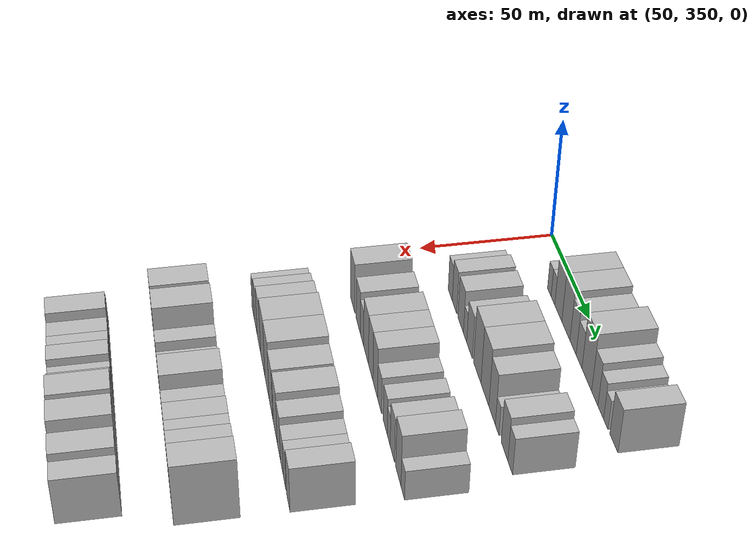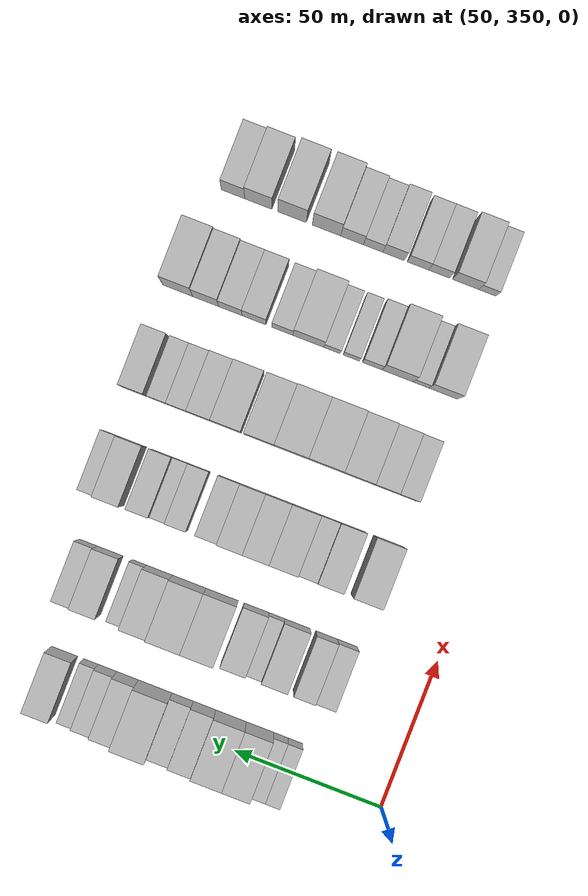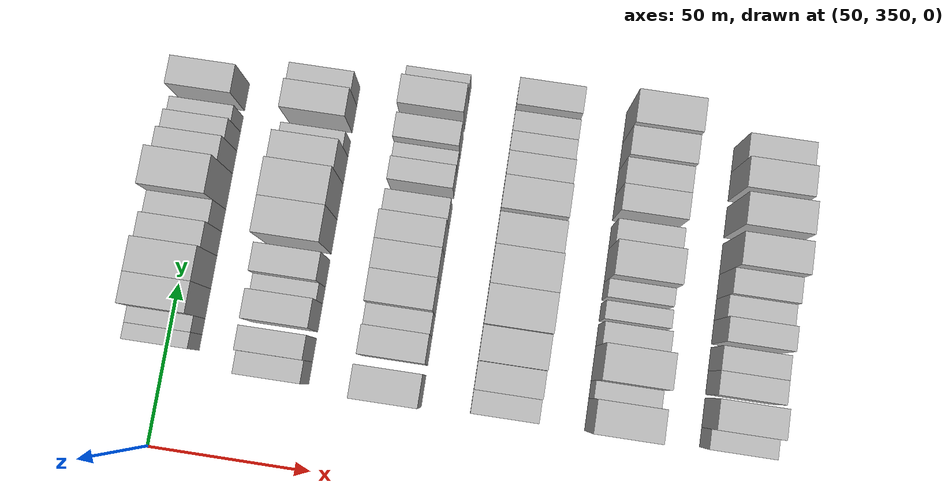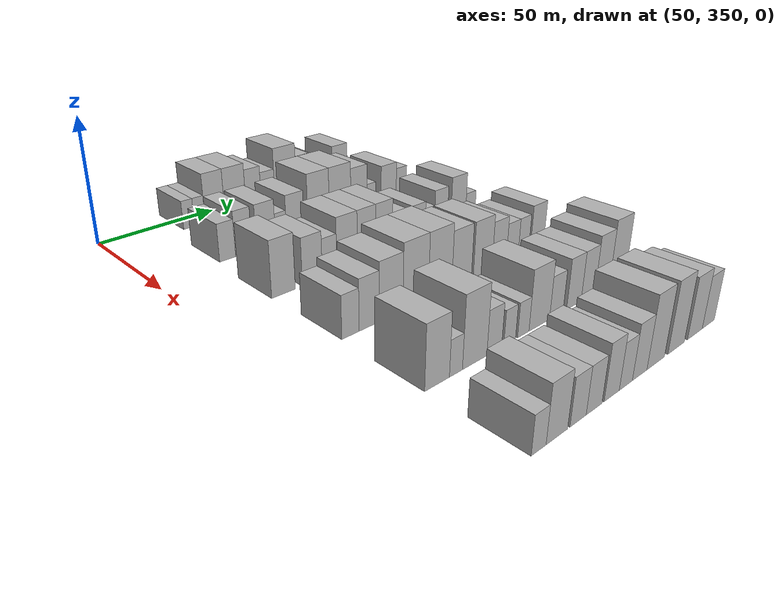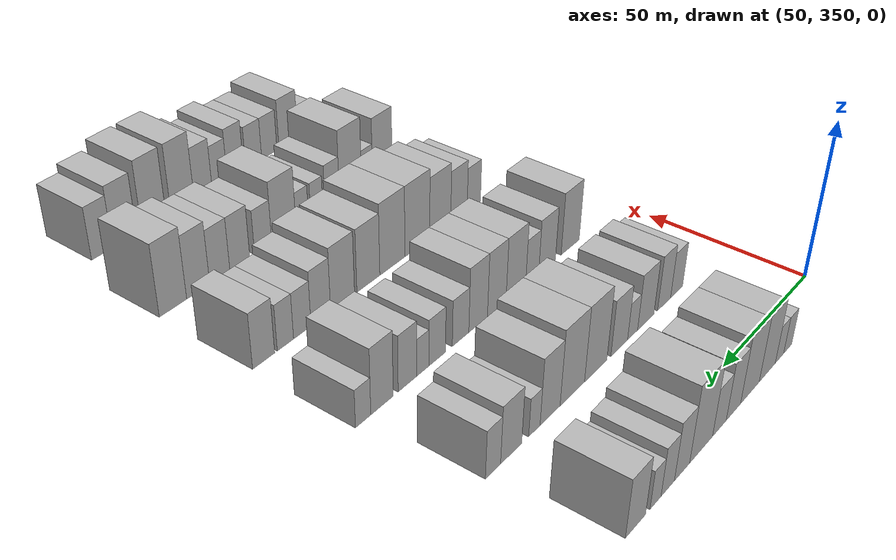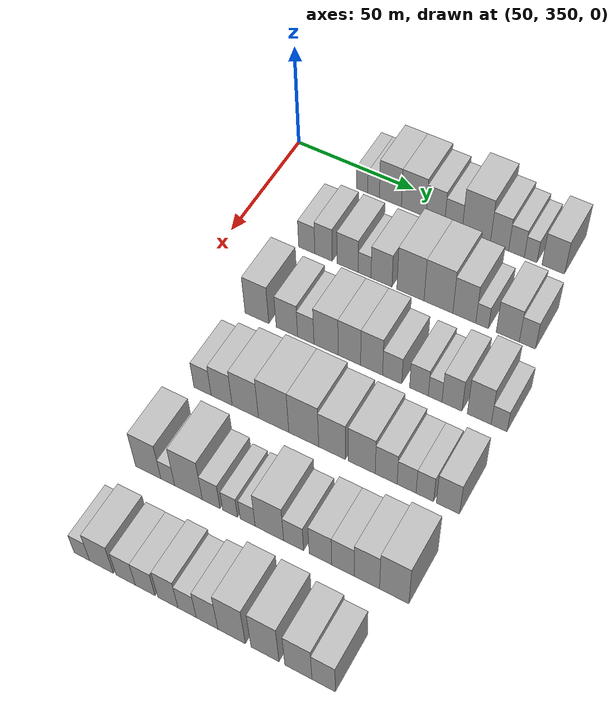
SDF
<sdf version="1.6">
 <world name="default">
  <model name="building_100">
   <static>1</static>
   <pose>50.0000 383.2186 0 0.000000 0.000000 0.000000</pose>
   <link name="link">
    <pose>0 0 6.00 0 0 0</pose>
    <collision name="collision"><geometry><box><size>20.0000 4.8909 12.0000</size></box></geometry></collision>
    <visual name="visual">
     <cast_shadows>0</cast_shadows>
     <geometry><box><size>20.0000 4.8909 12.0000</size></box></geometry>
     <material>
      <script>
       <uri>model://HANNAS_wall/materials/scripts</uri>
       <uri>model://HANNAS_wall/materials/textures</uri>
       <name>vrc/HANNAS_wall</name>
      </script>
     </material>
    </visual>
   </link>
  </model>
  <model name="building_101">
   <static>1</static>
   <pose>50.0000 388.1436 0 0.000000 0.000000 0.000000</pose>
   <link name="link">
    <pose>0 0 6.00 0 0 0</pose>
    <collision name="collision"><geometry><box><size>20.0000 4.9592 12.0000</size></box></geometry></collision>
    <visual name="visual">
     <cast_shadows>0</cast_shadows>
     <geometry><box><size>20.0000 4.9592 12.0000</size></box></geometry>
     <material>
      <script>
       <uri>model://HANNAS_wall/materials/scripts</uri>
       <uri>model://HANNAS_wall/materials/textures</uri>
       <name>vrc/HANNAS_wall</name>
      </script>
     </material>
    </visual>
   </link>
  </model>
  <model name="building_102">
   <static>1</static>
   <pose>50.0000 395.2935 0 0.000000 0.000000 0.000000</pose>
   <link name="link">
    <pose>0 0 10.50 0 0 0</pose>
    <collision name="collision"><geometry><box><size>20.0000 9.3405 21.0000</size></box></geometry></collision>
    <visual name="visual">
     <cast_shadows>0</cast_shadows>
     <geometry><box><size>20.0000 9.3405 21.0000</size></box></geometry>
     <material>
      <script>
       <uri>model://HANNAS_wall/materials/scripts</uri>
       <uri>model://HANNAS_wall/materials/textures</uri>
       <name>vrc/HANNAS_wall</name>
      </script>
     </material>
    </visual>
   </link>
  </model>
  <model name="building_103">
   <static>1</static>
   <pose>50.0000 405.1580 0 0.000000 0.000000 0.000000</pose>
   <link name="link">
    <pose>0 0 10.50 0 0 0</pose>
    <collision name="collision"><geometry><box><size>20.0000 10.3886 21.0000</size></box></geometry></collision>
    <visual name="visual">
     <cast_shadows>0</cast_shadows>
     <geometry><box><size>20.0000 10.3886 21.0000</size></box></geometry>
     <material>
      <script>
       <uri>model://HANNAS_wall/materials/scripts</uri>
       <uri>model://HANNAS_wall/materials/textures</uri>
       <name>vrc/HANNAS_wall</name>
      </script>
     </material>
    </visual>
   </link>
  </model>
  <model name="building_104">
   <static>1</static>
   <pose>50.0000 414.2094 0 0.000000 0.000000 0.000000</pose>
   <link name="link">
    <pose>0 0 9.00 0 0 0</pose>
    <collision name="collision"><geometry><box><size>20.0000 7.7143 18.0000</size></box></geometry></collision>
    <visual name="visual">
     <cast_shadows>0</cast_shadows>
     <geometry><box><size>20.0000 7.7143 18.0000</size></box></geometry>
     <material>
      <script>
       <uri>model://HANNAS_wall/materials/scripts</uri>
       <uri>model://HANNAS_wall/materials/textures</uri>
       <name>vrc/HANNAS_wall</name>
      </script>
     </material>
    </visual>
   </link>
  </model>
  <model name="building_105">
   <static>1</static>
   <pose>50.0000 421.6431 0 0.000000 0.000000 0.000000</pose>
   <link name="link">
    <pose>0 0 7.50 0 0 0</pose>
    <collision name="collision"><geometry><box><size>20.0000 7.1531 15.0000</size></box></geometry></collision>
    <visual name="visual">
     <cast_shadows>0</cast_shadows>
     <geometry><box><size>20.0000 7.1531 15.0000</size></box></geometry>
     <material>
      <script>
       <uri>model://HANNAS_wall/materials/scripts</uri>
       <uri>model://HANNAS_wall/materials/textures</uri>
       <name>vrc/HANNAS_wall</name>
      </script>
     </material>
    </visual>
   </link>
  </model>
  <model name="building_106">
   <static>1</static>
   <pose>50.0000 430.9788 0 0.000000 0.000000 0.000000</pose>
   <link name="link">
    <pose>0 0 12.00 0 0 0</pose>
    <collision name="collision"><geometry><box><size>20.0000 11.5182 24.0000</size></box></geometry></collision>
    <visual name="visual">
     <cast_shadows>0</cast_shadows>
     <geometry><box><size>20.0000 11.5182 24.0000</size></box></geometry>
     <material>
      <script>
       <uri>model://HANNAS_wall/materials/scripts</uri>
       <uri>model://HANNAS_wall/materials/textures</uri>
       <name>vrc/HANNAS_wall</name>
      </script>
     </material>
    </visual>
   </link>
  </model>
  <model name="building_107">
   <static>1</static>
   <pose>50.0000 440.4270 0 0.000000 0.000000 0.000000</pose>
   <link name="link">
    <pose>0 0 9.00 0 0 0</pose>
    <collision name="collision"><geometry><box><size>20.0000 7.3782 18.0000</size></box></geometry></collision>
    <visual name="visual">
     <cast_shadows>0</cast_shadows>
     <geometry><box><size>20.0000 7.3782 18.0000</size></box></geometry>
     <material>
      <script>
       <uri>model://HANNAS_wall/materials/scripts</uri>
       <uri>model://HANNAS_wall/materials/textures</uri>
       <name>vrc/HANNAS_wall</name>
      </script>
     </material>
    </visual>
   </link>
  </model>
  <model name="building_108">
   <static>1</static>
   <pose>50.0000 447.2588 0 0.000000 0.000000 0.000000</pose>
   <link name="link">
    <pose>0 0 7.50 0 0 0</pose>
    <collision name="collision"><geometry><box><size>20.0000 6.2854 15.0000</size></box></geometry></collision>
    <visual name="visual">
     <cast_shadows>0</cast_shadows>
     <geometry><box><size>20.0000 6.2854 15.0000</size></box></geometry>
     <material>
      <script>
       <uri>model://HANNAS_wall/materials/scripts</uri>
       <uri>model://HANNAS_wall/materials/textures</uri>
       <name>vrc/HANNAS_wall</name>
      </script>
     </material>
    </visual>
   </link>
  </model>
  <model name="building_109">
   <static>1</static>
   <pose>50.0000 452.9216 0 0.000000 0.000000 0.000000</pose>
   <link name="link">
    <pose>0 0 6.00 0 0 0</pose>
    <collision name="collision"><geometry><box><size>20.0000 5.0402 12.0000</size></box></geometry></collision>
    <visual name="visual">
     <cast_shadows>0</cast_shadows>
     <geometry><box><size>20.0000 5.0402 12.0000</size></box></geometry>
     <material>
      <script>
       <uri>model://HANNAS_wall/materials/scripts</uri>
       <uri>model://HANNAS_wall/materials/textures</uri>
       <name>vrc/HANNAS_wall</name>
      </script>
     </material>
    </visual>
   </link>
  </model>
  <model name="building_110">
   <static>1</static>
   <pose>50.0000 461.8830 0 0.000000 0.000000 0.000000</pose>
   <link name="link">
    <pose>0 0 9.00 0 0 0</pose>
    <collision name="collision"><geometry><box><size>20.0000 8.8826 18.0000</size></box></geometry></collision>
    <visual name="visual">
     <cast_shadows>0</cast_shadows>
     <geometry><box><size>20.0000 8.8826 18.0000</size></box></geometry>
     <material>
      <script>
       <uri>model://HANNAS_wall/materials/scripts</uri>
       <uri>model://HANNAS_wall/materials/textures</uri>
       <name>vrc/HANNAS_wall</name>
      </script>
     </material>
    </visual>
   </link>
  </model>
  <model name="building_227">
   <static>1</static>
   <pose>85.0000 379.1085 0 0.000000 0.000000 0.000000</pose>
   <link name="link">
    <pose>0 0 7.50 0 0 0</pose>
    <collision name="collision"><geometry><box><size>20.0000 6.8151 15.0000</size></box></geometry></collision>
    <visual name="visual">
     <cast_shadows>0</cast_shadows>
     <geometry><box><size>20.0000 6.8151 15.0000</size></box></geometry>
     <material>
      <script>
       <uri>model://HANNAS_wall/materials/scripts</uri>
       <uri>model://HANNAS_wall/materials/textures</uri>
       <name>vrc/HANNAS_wall</name>
      </script>
     </material>
    </visual>
   </link>
  </model>
  <model name="building_228">
   <static>1</static>
   <pose>85.0000 386.1387 0 0.000000 0.000000 0.000000</pose>
   <link name="link">
    <pose>0 0 9.00 0 0 0</pose>
    <collision name="collision"><geometry><box><size>20.0000 7.2455 18.0000</size></box></geometry></collision>
    <visual name="visual">
     <cast_shadows>0</cast_shadows>
     <geometry><box><size>20.0000 7.2455 18.0000</size></box></geometry>
     <material>
      <script>
       <uri>model://HANNAS_wall/materials/scripts</uri>
       <uri>model://HANNAS_wall/materials/textures</uri>
       <name>vrc/HANNAS_wall</name>
      </script>
     </material>
    </visual>
   </link>
  </model>
  <model name="building_229">
   <static>1</static>
   <pose>85.0000 396.1389 0 0.000000 0.000000 0.000000</pose>
   <link name="link">
    <pose>0 0 9.00 0 0 0</pose>
    <collision name="collision"><geometry><box><size>20.0000 8.7548 18.0000</size></box></geometry></collision>
    <visual name="visual">
     <cast_shadows>0</cast_shadows>
     <geometry><box><size>20.0000 8.7548 18.0000</size></box></geometry>
     <material>
      <script>
       <uri>model://HANNAS_wall/materials/scripts</uri>
       <uri>model://HANNAS_wall/materials/textures</uri>
       <name>vrc/HANNAS_wall</name>
      </script>
     </material>
    </visual>
   </link>
  </model>
  <model name="building_230">
   <static>1</static>
   <pose>85.0000 403.1270 0 0.000000 0.000000 0.000000</pose>
   <link name="link">
    <pose>0 0 6.00 0 0 0</pose>
    <collision name="collision"><geometry><box><size>20.0000 5.2213 12.0000</size></box></geometry></collision>
    <visual name="visual">
     <cast_shadows>0</cast_shadows>
     <geometry><box><size>20.0000 5.2213 12.0000</size></box></geometry>
     <material>
      <script>
       <uri>model://HANNAS_wall/materials/scripts</uri>
       <uri>model://HANNAS_wall/materials/textures</uri>
       <name>vrc/HANNAS_wall</name>
      </script>
     </material>
    </visual>
   </link>
  </model>
  <model name="building_231">
   <static>1</static>
   <pose>85.0000 409.9870 0 0.000000 0.000000 0.000000</pose>
   <link name="link">
    <pose>0 0 9.00 0 0 0</pose>
    <collision name="collision"><geometry><box><size>20.0000 8.4988 18.0000</size></box></geometry></collision>
    <visual name="visual">
     <cast_shadows>0</cast_shadows>
     <geometry><box><size>20.0000 8.4988 18.0000</size></box></geometry>
     <material>
      <script>
       <uri>model://HANNAS_wall/materials/scripts</uri>
       <uri>model://HANNAS_wall/materials/textures</uri>
       <name>vrc/HANNAS_wall</name>
      </script>
     </material>
    </visual>
   </link>
  </model>
  <model name="building_232">
   <static>1</static>
   <pose>85.0000 421.6859 0 0.000000 0.000000 0.000000</pose>
   <link name="link">
    <pose>0 0 12.00 0 0 0</pose>
    <collision name="collision"><geometry><box><size>20.0000 10.8989 24.0000</size></box></geometry></collision>
    <visual name="visual">
     <cast_shadows>0</cast_shadows>
     <geometry><box><size>20.0000 10.8989 24.0000</size></box></geometry>
     <material>
      <script>
       <uri>model://HANNAS_wall/materials/scripts</uri>
       <uri>model://HANNAS_wall/materials/textures</uri>
       <name>vrc/HANNAS_wall</name>
      </script>
     </material>
    </visual>
   </link>
  </model>
  <model name="building_233">
   <static>1</static>
   <pose>85.0000 432.8403 0 0.000000 0.000000 0.000000</pose>
   <link name="link">
    <pose>0 0 12.00 0 0 0</pose>
    <collision name="collision"><geometry><box><size>20.0000 11.4097 24.0000</size></box></geometry></collision>
    <visual name="visual">
     <cast_shadows>0</cast_shadows>
     <geometry><box><size>20.0000 11.4097 24.0000</size></box></geometry>
     <material>
      <script>
       <uri>model://HANNAS_wall/materials/scripts</uri>
       <uri>model://HANNAS_wall/materials/textures</uri>
       <name>vrc/HANNAS_wall</name>
      </script>
     </material>
    </visual>
   </link>
  </model>
  <model name="building_234">
   <static>1</static>
   <pose>85.0000 443.0267 0 0.000000 0.000000 0.000000</pose>
   <link name="link">
    <pose>0 0 10.50 0 0 0</pose>
    <collision name="collision"><geometry><box><size>20.0000 8.9631 21.0000</size></box></geometry></collision>
    <visual name="visual">
     <cast_shadows>0</cast_shadows>
     <geometry><box><size>20.0000 8.9631 21.0000</size></box></geometry>
     <material>
      <script>
       <uri>model://HANNAS_wall/materials/scripts</uri>
       <uri>model://HANNAS_wall/materials/textures</uri>
       <name>vrc/HANNAS_wall</name>
      </script>
     </material>
    </visual>
   </link>
  </model>
  <model name="building_235">
   <static>1</static>
   <pose>85.0000 449.9866 0 0.000000 0.000000 0.000000</pose>
   <link name="link">
    <pose>0 0 6.00 0 0 0</pose>
    <collision name="collision"><geometry><box><size>20.0000 4.9568 12.0000</size></box></geometry></collision>
    <visual name="visual">
     <cast_shadows>0</cast_shadows>
     <geometry><box><size>20.0000 4.9568 12.0000</size></box></geometry>
     <material>
      <script>
       <uri>model://HANNAS_wall/materials/scripts</uri>
       <uri>model://HANNAS_wall/materials/textures</uri>
       <name>vrc/HANNAS_wall</name>
      </script>
     </material>
    </visual>
   </link>
  </model>
  <model name="building_236">
   <static>1</static>
   <pose>85.0000 459.8784 0 0.000000 0.000000 0.000000</pose>
   <link name="link">
    <pose>0 0 9.00 0 0 0</pose>
    <collision name="collision"><geometry><box><size>20.0000 8.8268 18.0000</size></box></geometry></collision>
    <visual name="visual">
     <cast_shadows>0</cast_shadows>
     <geometry><box><size>20.0000 8.8268 18.0000</size></box></geometry>
     <material>
      <script>
       <uri>model://HANNAS_wall/materials/scripts</uri>
       <uri>model://HANNAS_wall/materials/textures</uri>
       <name>vrc/HANNAS_wall</name>
      </script>
     </material>
    </visual>
   </link>
  </model>
  <model name="building_237">
   <static>1</static>
   <pose>85.0000 467.3792 0 0.000000 0.000000 0.000000</pose>
   <link name="link">
    <pose>0 0 7.50 0 0 0</pose>
    <collision name="collision"><geometry><box><size>20.0000 6.1748 15.0000</size></box></geometry></collision>
    <visual name="visual">
     <cast_shadows>0</cast_shadows>
     <geometry><box><size>20.0000 6.1748 15.0000</size></box></geometry>
     <material>
      <script>
       <uri>model://HANNAS_wall/materials/scripts</uri>
       <uri>model://HANNAS_wall/materials/textures</uri>
       <name>vrc/HANNAS_wall</name>
      </script>
     </material>
    </visual>
   </link>
  </model>
  <model name="building_354">
   <static>1</static>
   <pose>120.0000 378.7935 0 0.000000 0.000000 0.000000</pose>
   <link name="link">
    <pose>0 0 10.50 0 0 0</pose>
    <collision name="collision"><geometry><box><size>20.0000 9.7318 21.0000</size></box></geometry></collision>
    <visual name="visual">
     <cast_shadows>0</cast_shadows>
     <geometry><box><size>20.0000 9.7318 21.0000</size></box></geometry>
     <material>
      <script>
       <uri>model://HANNAS_wall/materials/scripts</uri>
       <uri>model://HANNAS_wall/materials/textures</uri>
       <name>vrc/HANNAS_wall</name>
      </script>
     </material>
    </visual>
   </link>
  </model>
  <model name="building_355">
   <static>1</static>
   <pose>120.0000 390.9994 0 0.000000 0.000000 0.000000</pose>
   <link name="link">
    <pose>0 0 9.00 0 0 0</pose>
    <collision name="collision"><geometry><box><size>20.0000 8.6802 18.0000</size></box></geometry></collision>
    <visual name="visual">
     <cast_shadows>0</cast_shadows>
     <geometry><box><size>20.0000 8.6802 18.0000</size></box></geometry>
     <material>
      <script>
       <uri>model://HANNAS_wall/materials/scripts</uri>
       <uri>model://HANNAS_wall/materials/textures</uri>
       <name>vrc/HANNAS_wall</name>
      </script>
     </material>
    </visual>
   </link>
  </model>
  <model name="building_356">
   <static>1</static>
   <pose>120.0000 398.6288 0 0.000000 0.000000 0.000000</pose>
   <link name="link">
    <pose>0 0 7.50 0 0 0</pose>
    <collision name="collision"><geometry><box><size>20.0000 6.5785 15.0000</size></box></geometry></collision>
    <visual name="visual">
     <cast_shadows>0</cast_shadows>
     <geometry><box><size>20.0000 6.5785 15.0000</size></box></geometry>
     <material>
      <script>
       <uri>model://HANNAS_wall/materials/scripts</uri>
       <uri>model://HANNAS_wall/materials/textures</uri>
       <name>vrc/HANNAS_wall</name>
      </script>
     </material>
    </visual>
   </link>
  </model>
  <model name="building_357">
   <static>1</static>
   <pose>120.0000 406.7277 0 0.000000 0.000000 0.000000</pose>
   <link name="link">
    <pose>0 0 10.50 0 0 0</pose>
    <collision name="collision"><geometry><box><size>20.0000 9.6194 21.0000</size></box></geometry></collision>
    <visual name="visual">
     <cast_shadows>0</cast_shadows>
     <geometry><box><size>20.0000 9.6194 21.0000</size></box></geometry>
     <material>
      <script>
       <uri>model://HANNAS_wall/materials/scripts</uri>
       <uri>model://HANNAS_wall/materials/textures</uri>
       <name>vrc/HANNAS_wall</name>
      </script>
     </material>
    </visual>
   </link>
  </model>
  <model name="building_358">
   <static>1</static>
   <pose>120.0000 415.9400 0 0.000000 0.000000 0.000000</pose>
   <link name="link">
    <pose>0 0 10.50 0 0 0</pose>
    <collision name="collision"><geometry><box><size>20.0000 8.8050 21.0000</size></box></geometry></collision>
    <visual name="visual">
     <cast_shadows>0</cast_shadows>
     <geometry><box><size>20.0000 8.8050 21.0000</size></box></geometry>
     <material>
      <script>
       <uri>model://HANNAS_wall/materials/scripts</uri>
       <uri>model://HANNAS_wall/materials/textures</uri>
       <name>vrc/HANNAS_wall</name>
      </script>
     </material>
    </visual>
   </link>
  </model>
  <model name="building_359">
   <static>1</static>
   <pose>120.0000 424.6210 0 0.000000 0.000000 0.000000</pose>
   <link name="link">
    <pose>0 0 10.50 0 0 0</pose>
    <collision name="collision"><geometry><box><size>20.0000 8.5571 21.0000</size></box></geometry></collision>
    <visual name="visual">
     <cast_shadows>0</cast_shadows>
     <geometry><box><size>20.0000 8.5571 21.0000</size></box></geometry>
     <material>
      <script>
       <uri>model://HANNAS_wall/materials/scripts</uri>
       <uri>model://HANNAS_wall/materials/textures</uri>
       <name>vrc/HANNAS_wall</name>
      </script>
     </material>
    </visual>
   </link>
  </model>
  <model name="building_360">
   <static>1</static>
   <pose>120.0000 432.5908 0 0.000000 0.000000 0.000000</pose>
   <link name="link">
    <pose>0 0 7.50 0 0 0</pose>
    <collision name="collision"><geometry><box><size>20.0000 7.3825 15.0000</size></box></geometry></collision>
    <visual name="visual">
     <cast_shadows>0</cast_shadows>
     <geometry><box><size>20.0000 7.3825 15.0000</size></box></geometry>
     <material>
      <script>
       <uri>model://HANNAS_wall/materials/scripts</uri>
       <uri>model://HANNAS_wall/materials/textures</uri>
       <name>vrc/HANNAS_wall</name>
      </script>
     </material>
    </visual>
   </link>
  </model>
  <model name="building_361">
   <static>1</static>
   <pose>120.0000 442.8412 0 0.000000 0.000000 0.000000</pose>
   <link name="link">
    <pose>0 0 7.50 0 0 0</pose>
    <collision name="collision"><geometry><box><size>20.0000 7.1185 15.0000</size></box></geometry></collision>
    <visual name="visual">
     <cast_shadows>0</cast_shadows>
     <geometry><box><size>20.0000 7.1185 15.0000</size></box></geometry>
     <material>
      <script>
       <uri>model://HANNAS_wall/materials/scripts</uri>
       <uri>model://HANNAS_wall/materials/textures</uri>
       <name>vrc/HANNAS_wall</name>
      </script>
     </material>
    </visual>
   </link>
  </model>
  <model name="building_362">
   <static>1</static>
   <pose>120.0000 448.9829 0 0.000000 0.000000 0.000000</pose>
   <link name="link">
    <pose>0 0 6.00 0 0 0</pose>
    <collision name="collision"><geometry><box><size>20.0000 5.1649 12.0000</size></box></geometry></collision>
    <visual name="visual">
     <cast_shadows>0</cast_shadows>
     <geometry><box><size>20.0000 5.1649 12.0000</size></box></geometry>
     <material>
      <script>
       <uri>model://HANNAS_wall/materials/scripts</uri>
       <uri>model://HANNAS_wall/materials/textures</uri>
       <name>vrc/HANNAS_wall</name>
      </script>
     </material>
    </visual>
   </link>
  </model>
  <model name="building_363">
   <static>1</static>
   <pose>120.0000 455.3181 0 0.000000 0.000000 0.000000</pose>
   <link name="link">
    <pose>0 0 9.00 0 0 0</pose>
    <collision name="collision"><geometry><box><size>20.0000 7.5056 18.0000</size></box></geometry></collision>
    <visual name="visual">
     <cast_shadows>0</cast_shadows>
     <geometry><box><size>20.0000 7.5056 18.0000</size></box></geometry>
     <material>
      <script>
       <uri>model://HANNAS_wall/materials/scripts</uri>
       <uri>model://HANNAS_wall/materials/textures</uri>
       <name>vrc/HANNAS_wall</name>
      </script>
     </material>
    </visual>
   </link>
  </model>
  <model name="building_364">
   <static>1</static>
   <pose>120.0000 465.4740 0 0.000000 0.000000 0.000000</pose>
   <link name="link">
    <pose>0 0 10.50 0 0 0</pose>
    <collision name="collision"><geometry><box><size>20.0000 8.8061 21.0000</size></box></geometry></collision>
    <visual name="visual">
     <cast_shadows>0</cast_shadows>
     <geometry><box><size>20.0000 8.8061 21.0000</size></box></geometry>
     <material>
      <script>
       <uri>model://HANNAS_wall/materials/scripts</uri>
       <uri>model://HANNAS_wall/materials/textures</uri>
       <name>vrc/HANNAS_wall</name>
      </script>
     </material>
    </visual>
   </link>
  </model>
  <model name="building_365">
   <static>1</static>
   <pose>120.0000 472.8048 0 0.000000 0.000000 0.000000</pose>
   <link name="link">
    <pose>0 0 6.00 0 0 0</pose>
    <collision name="collision"><geometry><box><size>20.0000 5.8555 12.0000</size></box></geometry></collision>
    <visual name="visual">
     <cast_shadows>0</cast_shadows>
     <geometry><box><size>20.0000 5.8555 12.0000</size></box></geometry>
     <material>
      <script>
       <uri>model://HANNAS_wall/materials/scripts</uri>
       <uri>model://HANNAS_wall/materials/textures</uri>
       <name>vrc/HANNAS_wall</name>
      </script>
     </material>
    </visual>
   </link>
  </model>
  <model name="building_477">
   <static>1</static>
   <pose>155.0000 378.2222 0 0.000000 0.000000 0.000000</pose>
   <link name="link">
    <pose>0 0 7.50 0 0 0</pose>
    <collision name="collision"><geometry><box><size>20.0000 6.9160 15.0000</size></box></geometry></collision>
    <visual name="visual">
     <cast_shadows>0</cast_shadows>
     <geometry><box><size>20.0000 6.9160 15.0000</size></box></geometry>
     <material>
      <script>
       <uri>model://HANNAS_wall/materials/scripts</uri>
       <uri>model://HANNAS_wall/materials/textures</uri>
       <name>vrc/HANNAS_wall</name>
      </script>
     </material>
    </visual>
   </link>
  </model>
  <model name="building_478">
   <static>1</static>
   <pose>155.0000 385.8341 0 0.000000 0.000000 0.000000</pose>
   <link name="link">
    <pose>0 0 9.00 0 0 0</pose>
    <collision name="collision"><geometry><box><size>20.0000 8.3079 18.0000</size></box></geometry></collision>
    <visual name="visual">
     <cast_shadows>0</cast_shadows>
     <geometry><box><size>20.0000 8.3079 18.0000</size></box></geometry>
     <material>
      <script>
       <uri>model://HANNAS_wall/materials/scripts</uri>
       <uri>model://HANNAS_wall/materials/textures</uri>
       <name>vrc/HANNAS_wall</name>
      </script>
     </material>
    </visual>
   </link>
  </model>
  <model name="building_479">
   <static>1</static>
   <pose>155.0000 395.1638 0 0.000000 0.000000 0.000000</pose>
   <link name="link">
    <pose>0 0 10.50 0 0 0</pose>
    <collision name="collision"><geometry><box><size>20.0000 10.3515 21.0000</size></box></geometry></collision>
    <visual name="visual">
     <cast_shadows>0</cast_shadows>
     <geometry><box><size>20.0000 10.3515 21.0000</size></box></geometry>
     <material>
      <script>
       <uri>model://HANNAS_wall/materials/scripts</uri>
       <uri>model://HANNAS_wall/materials/textures</uri>
       <name>vrc/HANNAS_wall</name>
      </script>
     </material>
    </visual>
   </link>
  </model>
  <model name="building_480">
   <static>1</static>
   <pose>155.0000 406.2107 0 0.000000 0.000000 0.000000</pose>
   <link name="link">
    <pose>0 0 12.00 0 0 0</pose>
    <collision name="collision"><geometry><box><size>20.0000 11.7423 24.0000</size></box></geometry></collision>
    <visual name="visual">
     <cast_shadows>0</cast_shadows>
     <geometry><box><size>20.0000 11.7423 24.0000</size></box></geometry>
     <material>
      <script>
       <uri>model://HANNAS_wall/materials/scripts</uri>
       <uri>model://HANNAS_wall/materials/textures</uri>
       <name>vrc/HANNAS_wall</name>
      </script>
     </material>
    </visual>
   </link>
  </model>
  <model name="building_481">
   <static>1</static>
   <pose>155.0000 417.7868 0 0.000000 0.000000 0.000000</pose>
   <link name="link">
    <pose>0 0 12.00 0 0 0</pose>
    <collision name="collision"><geometry><box><size>20.0000 11.4098 24.0000</size></box></geometry></collision>
    <visual name="visual">
     <cast_shadows>0</cast_shadows>
     <geometry><box><size>20.0000 11.4098 24.0000</size></box></geometry>
     <material>
      <script>
       <uri>model://HANNAS_wall/materials/scripts</uri>
       <uri>model://HANNAS_wall/materials/textures</uri>
       <name>vrc/HANNAS_wall</name>
      </script>
     </material>
    </visual>
   </link>
  </model>
  <model name="building_482">
   <static>1</static>
   <pose>155.0000 428.5130 0 0.000000 0.000000 0.000000</pose>
   <link name="link">
    <pose>0 0 10.50 0 0 0</pose>
    <collision name="collision"><geometry><box><size>20.0000 10.0425 21.0000</size></box></geometry></collision>
    <visual name="visual">
     <cast_shadows>0</cast_shadows>
     <geometry><box><size>20.0000 10.0425 21.0000</size></box></geometry>
     <material>
      <script>
       <uri>model://HANNAS_wall/materials/scripts</uri>
       <uri>model://HANNAS_wall/materials/textures</uri>
       <name>vrc/HANNAS_wall</name>
      </script>
     </material>
    </visual>
   </link>
  </model>
  <model name="building_483">
   <static>1</static>
   <pose>155.0000 439.5802 0 0.000000 0.000000 0.000000</pose>
   <link name="link">
    <pose>0 0 10.50 0 0 0</pose>
    <collision name="collision"><geometry><box><size>20.0000 10.0919 21.0000</size></box></geometry></collision>
    <visual name="visual">
     <cast_shadows>0</cast_shadows>
     <geometry><box><size>20.0000 10.0919 21.0000</size></box></geometry>
     <material>
      <script>
       <uri>model://HANNAS_wall/materials/scripts</uri>
       <uri>model://HANNAS_wall/materials/textures</uri>
       <name>vrc/HANNAS_wall</name>
      </script>
     </material>
    </visual>
   </link>
  </model>
  <model name="building_484">
   <static>1</static>
   <pose>155.0000 448.6309 0 0.000000 0.000000 0.000000</pose>
   <link name="link">
    <pose>0 0 9.00 0 0 0</pose>
    <collision name="collision"><geometry><box><size>20.0000 8.0096 18.0000</size></box></geometry></collision>
    <visual name="visual">
     <cast_shadows>0</cast_shadows>
     <geometry><box><size>20.0000 8.0096 18.0000</size></box></geometry>
     <material>
      <script>
       <uri>model://HANNAS_wall/materials/scripts</uri>
       <uri>model://HANNAS_wall/materials/textures</uri>
       <name>vrc/HANNAS_wall</name>
      </script>
     </material>
    </visual>
   </link>
  </model>
  <model name="building_485">
   <static>1</static>
   <pose>155.0000 456.0937 0 0.000000 0.000000 0.000000</pose>
   <link name="link">
    <pose>0 0 7.50 0 0 0</pose>
    <collision name="collision"><geometry><box><size>20.0000 6.9160 15.0000</size></box></geometry></collision>
    <visual name="visual">
     <cast_shadows>0</cast_shadows>
     <geometry><box><size>20.0000 6.9160 15.0000</size></box></geometry>
     <material>
      <script>
       <uri>model://HANNAS_wall/materials/scripts</uri>
       <uri>model://HANNAS_wall/materials/textures</uri>
       <name>vrc/HANNAS_wall</name>
      </script>
     </material>
    </visual>
   </link>
  </model>
  <model name="building_486">
   <static>1</static>
   <pose>155.0000 462.7073 0 0.000000 0.000000 0.000000</pose>
   <link name="link">
    <pose>0 0 7.50 0 0 0</pose>
    <collision name="collision"><geometry><box><size>20.0000 6.3112 15.0000</size></box></geometry></collision>
    <visual name="visual">
     <cast_shadows>0</cast_shadows>
     <geometry><box><size>20.0000 6.3112 15.0000</size></box></geometry>
     <material>
      <script>
       <uri>model://HANNAS_wall/materials/scripts</uri>
       <uri>model://HANNAS_wall/materials/textures</uri>
       <name>vrc/HANNAS_wall</name>
      </script>
     </material>
    </visual>
   </link>
  </model>
  <model name="building_487">
   <static>1</static>
   <pose>155.0000 471.0090 0 0.000000 0.000000 0.000000</pose>
   <link name="link">
    <pose>0 0 9.00 0 0 0</pose>
    <collision name="collision"><geometry><box><size>20.0000 8.2923 18.0000</size></box></geometry></collision>
    <visual name="visual">
     <cast_shadows>0</cast_shadows>
     <geometry><box><size>20.0000 8.2923 18.0000</size></box></geometry>
     <material>
      <script>
       <uri>model://HANNAS_wall/materials/scripts</uri>
       <uri>model://HANNAS_wall/materials/textures</uri>
       <name>vrc/HANNAS_wall</name>
      </script>
     </material>
    </visual>
   </link>
  </model>
  <model name="building_608">
   <static>1</static>
   <pose>190.0000 379.3507 0 0.000000 0.000000 0.000000</pose>
   <link name="link">
    <pose>0 0 10.50 0 0 0</pose>
    <collision name="collision"><geometry><box><size>20.0000 9.8285 21.0000</size></box></geometry></collision>
    <visual name="visual">
     <cast_shadows>0</cast_shadows>
     <geometry><box><size>20.0000 9.8285 21.0000</size></box></geometry>
     <material>
      <script>
       <uri>model://HANNAS_wall/materials/scripts</uri>
       <uri>model://HANNAS_wall/materials/textures</uri>
       <name>vrc/HANNAS_wall</name>
      </script>
     </material>
    </visual>
   </link>
  </model>
  <model name="building_609">
   <static>1</static>
   <pose>190.0000 386.9506 0 0.000000 0.000000 0.000000</pose>
   <link name="link">
    <pose>0 0 6.00 0 0 0</pose>
    <collision name="collision"><geometry><box><size>20.0000 5.3714 12.0000</size></box></geometry></collision>
    <visual name="visual">
     <cast_shadows>0</cast_shadows>
     <geometry><box><size>20.0000 5.3714 12.0000</size></box></geometry>
     <material>
      <script>
       <uri>model://HANNAS_wall/materials/scripts</uri>
       <uri>model://HANNAS_wall/materials/textures</uri>
       <name>vrc/HANNAS_wall</name>
      </script>
     </material>
    </visual>
   </link>
  </model>
  <model name="building_610">
   <static>1</static>
   <pose>190.0000 394.9207 0 0.000000 0.000000 0.000000</pose>
   <link name="link">
    <pose>0 0 12.00 0 0 0</pose>
    <collision name="collision"><geometry><box><size>20.0000 10.5690 24.0000</size></box></geometry></collision>
    <visual name="visual">
     <cast_shadows>0</cast_shadows>
     <geometry><box><size>20.0000 10.5690 24.0000</size></box></geometry>
     <material>
      <script>
       <uri>model://HANNAS_wall/materials/scripts</uri>
       <uri>model://HANNAS_wall/materials/textures</uri>
       <name>vrc/HANNAS_wall</name>
      </script>
     </material>
    </visual>
   </link>
  </model>
  <model name="building_611">
   <static>1</static>
   <pose>190.0000 403.5579 0 0.000000 0.000000 0.000000</pose>
   <link name="link">
    <pose>0 0 7.50 0 0 0</pose>
    <collision name="collision"><geometry><box><size>20.0000 6.7053 15.0000</size></box></geometry></collision>
    <visual name="visual">
     <cast_shadows>0</cast_shadows>
     <geometry><box><size>20.0000 6.7053 15.0000</size></box></geometry>
     <material>
      <script>
       <uri>model://HANNAS_wall/materials/scripts</uri>
       <uri>model://HANNAS_wall/materials/textures</uri>
       <name>vrc/HANNAS_wall</name>
      </script>
     </material>
    </visual>
   </link>
  </model>
  <model name="building_612">
   <static>1</static>
   <pose>190.0000 410.6806 0 0.000000 0.000000 0.000000</pose>
   <link name="link">
    <pose>0 0 6.00 0 0 0</pose>
    <collision name="collision"><geometry><box><size>20.0000 5.5401 12.0000</size></box></geometry></collision>
    <visual name="visual">
     <cast_shadows>0</cast_shadows>
     <geometry><box><size>20.0000 5.5401 12.0000</size></box></geometry>
     <material>
      <script>
       <uri>model://HANNAS_wall/materials/scripts</uri>
       <uri>model://HANNAS_wall/materials/textures</uri>
       <name>vrc/HANNAS_wall</name>
      </script>
     </material>
    </visual>
   </link>
  </model>
  <model name="building_613">
   <static>1</static>
   <pose>190.0000 417.2369 0 0.000000 0.000000 0.000000</pose>
   <link name="link">
    <pose>0 0 6.00 0 0 0</pose>
    <collision name="collision"><geometry><box><size>20.0000 5.5724 12.0000</size></box></geometry></collision>
    <visual name="visual">
     <cast_shadows>0</cast_shadows>
     <geometry><box><size>20.0000 5.5724 12.0000</size></box></geometry>
     <material>
      <script>
       <uri>model://HANNAS_wall/materials/scripts</uri>
       <uri>model://HANNAS_wall/materials/textures</uri>
       <name>vrc/HANNAS_wall</name>
      </script>
     </material>
    </visual>
   </link>
  </model>
  <model name="building_614">
   <static>1</static>
   <pose>190.0000 425.2708 0 0.000000 0.000000 0.000000</pose>
   <link name="link">
    <pose>0 0 10.50 0 0 0</pose>
    <collision name="collision"><geometry><box><size>20.0000 10.4956 21.0000</size></box></geometry></collision>
    <visual name="visual">
     <cast_shadows>0</cast_shadows>
     <geometry><box><size>20.0000 10.4956 21.0000</size></box></geometry>
     <material>
      <script>
       <uri>model://HANNAS_wall/materials/scripts</uri>
       <uri>model://HANNAS_wall/materials/textures</uri>
       <name>vrc/HANNAS_wall</name>
      </script>
     </material>
    </visual>
   </link>
  </model>
  <model name="building_615">
   <static>1</static>
   <pose>190.0000 434.1320 0 0.000000 0.000000 0.000000</pose>
   <link name="link">
    <pose>0 0 7.50 0 0 0</pose>
    <collision name="collision"><geometry><box><size>20.0000 7.2268 15.0000</size></box></geometry></collision>
    <visual name="visual">
     <cast_shadows>0</cast_shadows>
     <geometry><box><size>20.0000 7.2268 15.0000</size></box></geometry>
     <material>
      <script>
       <uri>model://HANNAS_wall/materials/scripts</uri>
       <uri>model://HANNAS_wall/materials/textures</uri>
       <name>vrc/HANNAS_wall</name>
      </script>
     </material>
    </visual>
   </link>
  </model>
  <model name="building_616">
   <static>1</static>
   <pose>190.0000 443.8002 0 0.000000 0.000000 0.000000</pose>
   <link name="link">
    <pose>0 0 9.00 0 0 0</pose>
    <collision name="collision"><geometry><box><size>20.0000 8.1095 18.0000</size></box></geometry></collision>
    <visual name="visual">
     <cast_shadows>0</cast_shadows>
     <geometry><box><size>20.0000 8.1095 18.0000</size></box></geometry>
     <material>
      <script>
       <uri>model://HANNAS_wall/materials/scripts</uri>
       <uri>model://HANNAS_wall/materials/textures</uri>
       <name>vrc/HANNAS_wall</name>
      </script>
     </material>
    </visual>
   </link>
  </model>
  <model name="building_617">
   <static>1</static>
   <pose>190.0000 451.8408 0 0.000000 0.000000 0.000000</pose>
   <link name="link">
    <pose>0 0 9.00 0 0 0</pose>
    <collision name="collision"><geometry><box><size>20.0000 7.9715 18.0000</size></box></geometry></collision>
    <visual name="visual">
     <cast_shadows>0</cast_shadows>
     <geometry><box><size>20.0000 7.9715 18.0000</size></box></geometry>
     <material>
      <script>
       <uri>model://HANNAS_wall/materials/scripts</uri>
       <uri>model://HANNAS_wall/materials/textures</uri>
       <name>vrc/HANNAS_wall</name>
      </script>
     </material>
    </visual>
   </link>
  </model>
  <model name="building_618">
   <static>1</static>
   <pose>190.0000 460.2684 0 0.000000 0.000000 0.000000</pose>
   <link name="link">
    <pose>0 0 10.50 0 0 0</pose>
    <collision name="collision"><geometry><box><size>20.0000 8.8837 21.0000</size></box></geometry></collision>
    <visual name="visual">
     <cast_shadows>0</cast_shadows>
     <geometry><box><size>20.0000 8.8837 21.0000</size></box></geometry>
     <material>
      <script>
       <uri>model://HANNAS_wall/materials/scripts</uri>
       <uri>model://HANNAS_wall/materials/textures</uri>
       <name>vrc/HANNAS_wall</name>
      </script>
     </material>
    </visual>
   </link>
  </model>
  <model name="building_619">
   <static>1</static>
   <pose>190.0000 469.8029 0 0.000000 0.000000 0.000000</pose>
   <link name="link">
    <pose>0 0 12.00 0 0 0</pose>
    <collision name="collision"><geometry><box><size>20.0000 10.1853 24.0000</size></box></geometry></collision>
    <visual name="visual">
     <cast_shadows>0</cast_shadows>
     <geometry><box><size>20.0000 10.1853 24.0000</size></box></geometry>
     <material>
      <script>
       <uri>model://HANNAS_wall/materials/scripts</uri>
       <uri>model://HANNAS_wall/materials/textures</uri>
       <name>vrc/HANNAS_wall</name>
      </script>
     </material>
    </visual>
   </link>
  </model>
  <model name="building_733">
   <static>1</static>
   <pose>225.0000 377.7521 0 0.000000 0.000000 0.000000</pose>
   <link name="link">
    <pose>0 0 6.00 0 0 0</pose>
    <collision name="collision"><geometry><box><size>20.0000 5.9098 12.0000</size></box></geometry></collision>
    <visual name="visual">
     <cast_shadows>0</cast_shadows>
     <geometry><box><size>20.0000 5.9098 12.0000</size></box></geometry>
     <material>
      <script>
       <uri>model://HANNAS_wall/materials/scripts</uri>
       <uri>model://HANNAS_wall/materials/textures</uri>
       <name>vrc/HANNAS_wall</name>
      </script>
     </material>
    </visual>
   </link>
  </model>
  <model name="building_734">
   <static>1</static>
   <pose>225.0000 385.1829 0 0.000000 0.000000 0.000000</pose>
   <link name="link">
    <pose>0 0 9.00 0 0 0</pose>
    <collision name="collision"><geometry><box><size>20.0000 8.9517 18.0000</size></box></geometry></collision>
    <visual name="visual">
     <cast_shadows>0</cast_shadows>
     <geometry><box><size>20.0000 8.9517 18.0000</size></box></geometry>
     <material>
      <script>
       <uri>model://HANNAS_wall/materials/scripts</uri>
       <uri>model://HANNAS_wall/materials/textures</uri>
       <name>vrc/HANNAS_wall</name>
      </script>
     </material>
    </visual>
   </link>
  </model>
  <model name="building_735">
   <static>1</static>
   <pose>225.0000 394.2404 0 0.000000 0.000000 0.000000</pose>
   <link name="link">
    <pose>0 0 7.50 0 0 0</pose>
    <collision name="collision"><geometry><box><size>20.0000 7.1633 15.0000</size></box></geometry></collision>
    <visual name="visual">
     <cast_shadows>0</cast_shadows>
     <geometry><box><size>20.0000 7.1633 15.0000</size></box></geometry>
     <material>
      <script>
       <uri>model://HANNAS_wall/materials/scripts</uri>
       <uri>model://HANNAS_wall/materials/textures</uri>
       <name>vrc/HANNAS_wall</name>
      </script>
     </material>
    </visual>
   </link>
  </model>
  <model name="building_736">
   <static>1</static>
   <pose>225.0000 401.4684 0 0.000000 0.000000 0.000000</pose>
   <link name="link">
    <pose>0 0 7.50 0 0 0</pose>
    <collision name="collision"><geometry><box><size>20.0000 7.2927 15.0000</size></box></geometry></collision>
    <visual name="visual">
     <cast_shadows>0</cast_shadows>
     <geometry><box><size>20.0000 7.2927 15.0000</size></box></geometry>
     <material>
      <script>
       <uri>model://HANNAS_wall/materials/scripts</uri>
       <uri>model://HANNAS_wall/materials/textures</uri>
       <name>vrc/HANNAS_wall</name>
      </script>
     </material>
    </visual>
   </link>
  </model>
  <model name="building_737">
   <static>1</static>
   <pose>225.0000 409.7938 0 0.000000 0.000000 0.000000</pose>
   <link name="link">
    <pose>0 0 9.00 0 0 0</pose>
    <collision name="collision"><geometry><box><size>20.0000 7.3581 18.0000</size></box></geometry></collision>
    <visual name="visual">
     <cast_shadows>0</cast_shadows>
     <geometry><box><size>20.0000 7.3581 18.0000</size></box></geometry>
     <material>
      <script>
       <uri>model://HANNAS_wall/materials/scripts</uri>
       <uri>model://HANNAS_wall/materials/textures</uri>
       <name>vrc/HANNAS_wall</name>
      </script>
     </material>
    </visual>
   </link>
  </model>
  <model name="building_738">
   <static>1</static>
   <pose>225.0000 416.7974 0 0.000000 0.000000 0.000000</pose>
   <link name="link">
    <pose>0 0 7.50 0 0 0</pose>
    <collision name="collision"><geometry><box><size>20.0000 6.6491 15.0000</size></box></geometry></collision>
    <visual name="visual">
     <cast_shadows>0</cast_shadows>
     <geometry><box><size>20.0000 6.6491 15.0000</size></box></geometry>
     <material>
      <script>
       <uri>model://HANNAS_wall/materials/scripts</uri>
       <uri>model://HANNAS_wall/materials/textures</uri>
       <name>vrc/HANNAS_wall</name>
      </script>
     </material>
    </visual>
   </link>
  </model>
  <model name="building_739">
   <static>1</static>
   <pose>225.0000 423.9807 0 0.000000 0.000000 0.000000</pose>
   <link name="link">
    <pose>0 0 9.00 0 0 0</pose>
    <collision name="collision"><geometry><box><size>20.0000 7.7175 18.0000</size></box></geometry></collision>
    <visual name="visual">
     <cast_shadows>0</cast_shadows>
     <geometry><box><size>20.0000 7.7175 18.0000</size></box></geometry>
     <material>
      <script>
       <uri>model://HANNAS_wall/materials/scripts</uri>
       <uri>model://HANNAS_wall/materials/textures</uri>
       <name>vrc/HANNAS_wall</name>
      </script>
     </material>
    </visual>
   </link>
  </model>
  <model name="building_740">
   <static>1</static>
   <pose>225.0000 432.6969 0 0.000000 0.000000 0.000000</pose>
   <link name="link">
    <pose>0 0 12.00 0 0 0</pose>
    <collision name="collision"><geometry><box><size>20.0000 9.7150 24.0000</size></box></geometry></collision>
    <visual name="visual">
     <cast_shadows>0</cast_shadows>
     <geometry><box><size>20.0000 9.7150 24.0000</size></box></geometry>
     <material>
      <script>
       <uri>model://HANNAS_wall/materials/scripts</uri>
       <uri>model://HANNAS_wall/materials/textures</uri>
       <name>vrc/HANNAS_wall</name>
      </script>
     </material>
    </visual>
   </link>
  </model>
  <model name="building_741">
   <static>1</static>
   <pose>225.0000 444.4224 0 0.000000 0.000000 0.000000</pose>
   <link name="link">
    <pose>0 0 12.00 0 0 0</pose>
    <collision name="collision"><geometry><box><size>20.0000 9.7359 24.0000</size></box></geometry></collision>
    <visual name="visual">
     <cast_shadows>0</cast_shadows>
     <geometry><box><size>20.0000 9.7359 24.0000</size></box></geometry>
     <material>
      <script>
       <uri>model://HANNAS_wall/materials/scripts</uri>
       <uri>model://HANNAS_wall/materials/textures</uri>
       <name>vrc/HANNAS_wall</name>
      </script>
     </material>
    </visual>
   </link>
  </model>
  <model name="building_742">
   <static>1</static>
   <pose>225.0000 455.9331 0 0.000000 0.000000 0.000000</pose>
   <link name="link">
    <pose>0 0 10.50 0 0 0</pose>
    <collision name="collision"><geometry><box><size>20.0000 9.2855 21.0000</size></box></geometry></collision>
    <visual name="visual">
     <cast_shadows>0</cast_shadows>
     <geometry><box><size>20.0000 9.2855 21.0000</size></box></geometry>
     <material>
      <script>
       <uri>model://HANNAS_wall/materials/scripts</uri>
       <uri>model://HANNAS_wall/materials/textures</uri>
       <name>vrc/HANNAS_wall</name>
      </script>
     </material>
    </visual>
   </link>
  </model>
  <model name="building_743">
   <static>1</static>
   <pose>225.0000 464.5473 0 0.000000 0.000000 0.000000</pose>
   <link name="link">
    <pose>0 0 9.00 0 0 0</pose>
    <collision name="collision"><geometry><box><size>20.0000 7.9428 18.0000</size></box></geometry></collision>
    <visual name="visual">
     <cast_shadows>0</cast_shadows>
     <geometry><box><size>20.0000 7.9428 18.0000</size></box></geometry>
     <material>
      <script>
       <uri>model://HANNAS_wall/materials/scripts</uri>
       <uri>model://HANNAS_wall/materials/textures</uri>
       <name>vrc/HANNAS_wall</name>
      </script>
     </material>
    </visual>
   </link>
  </model>
 </world>
</sdf>
